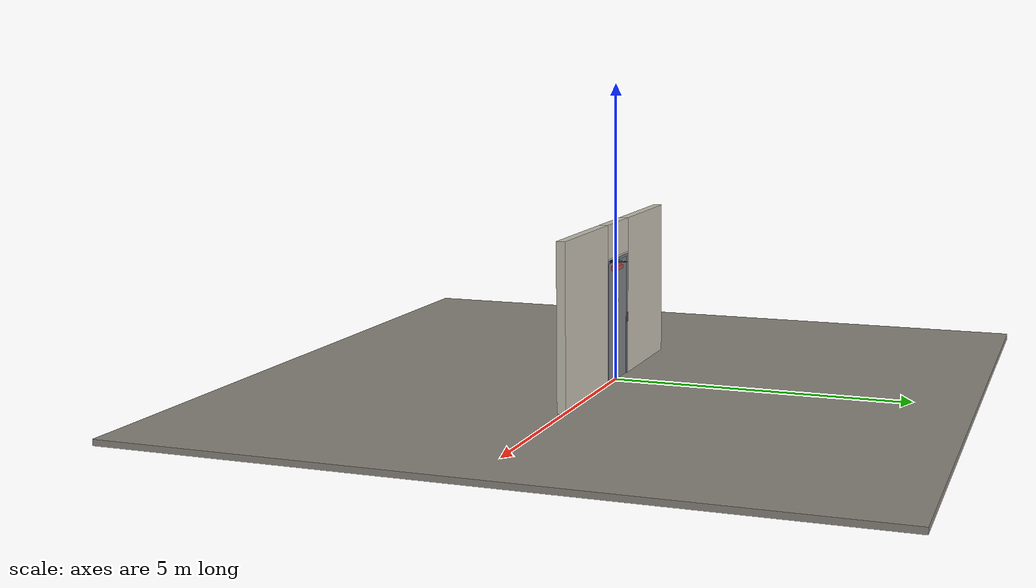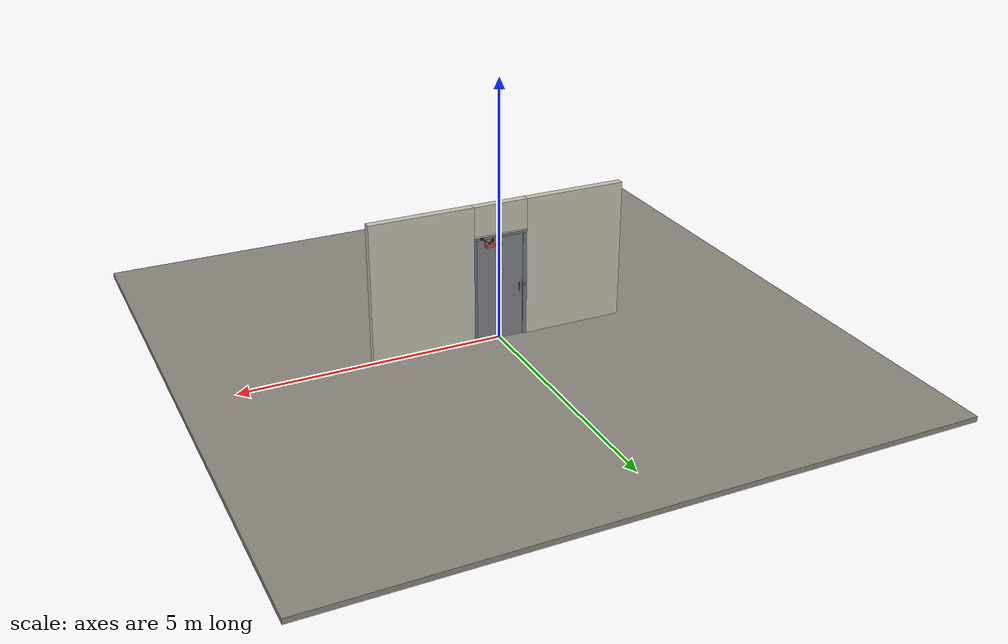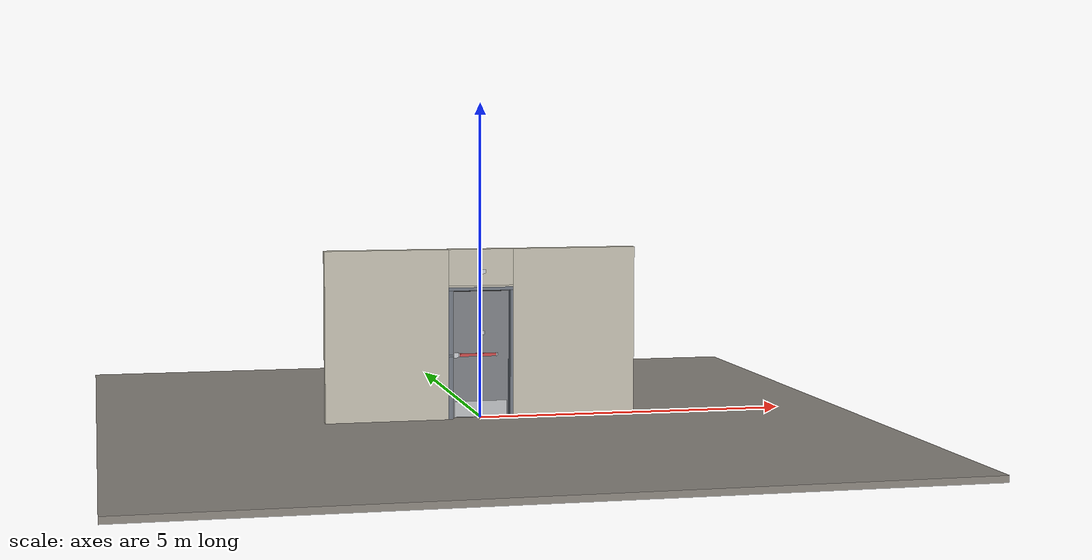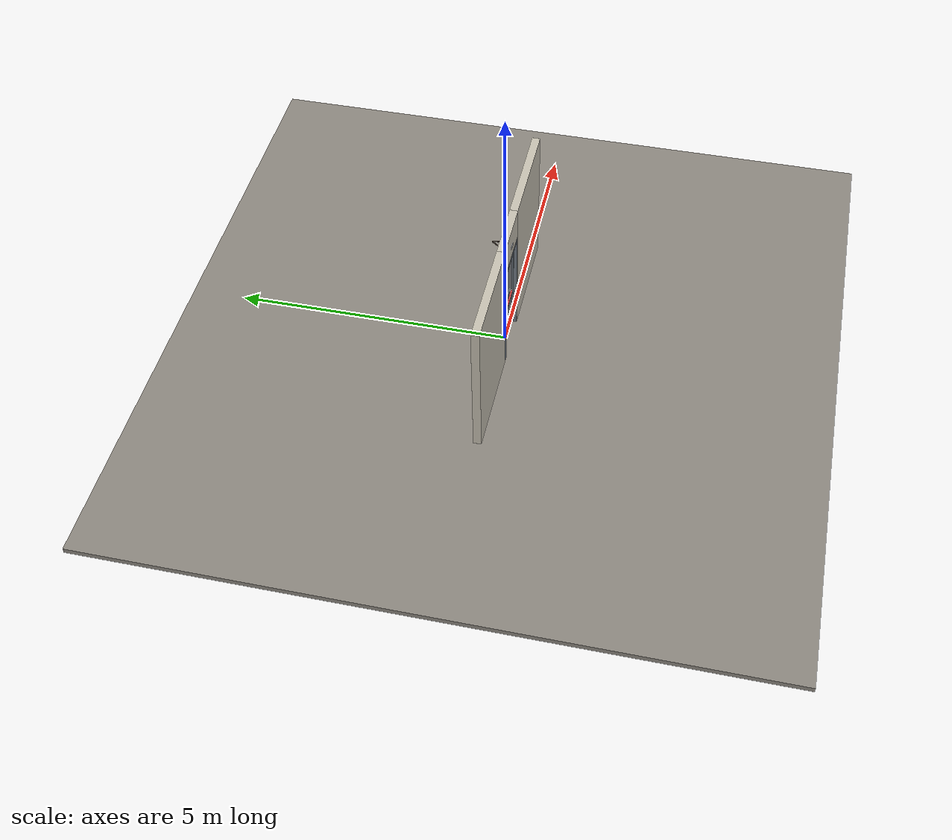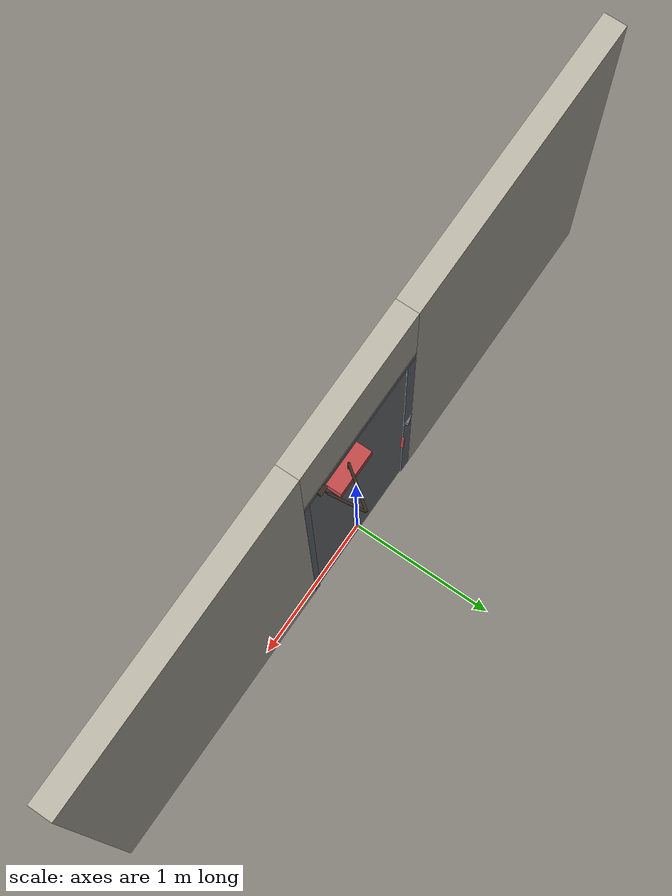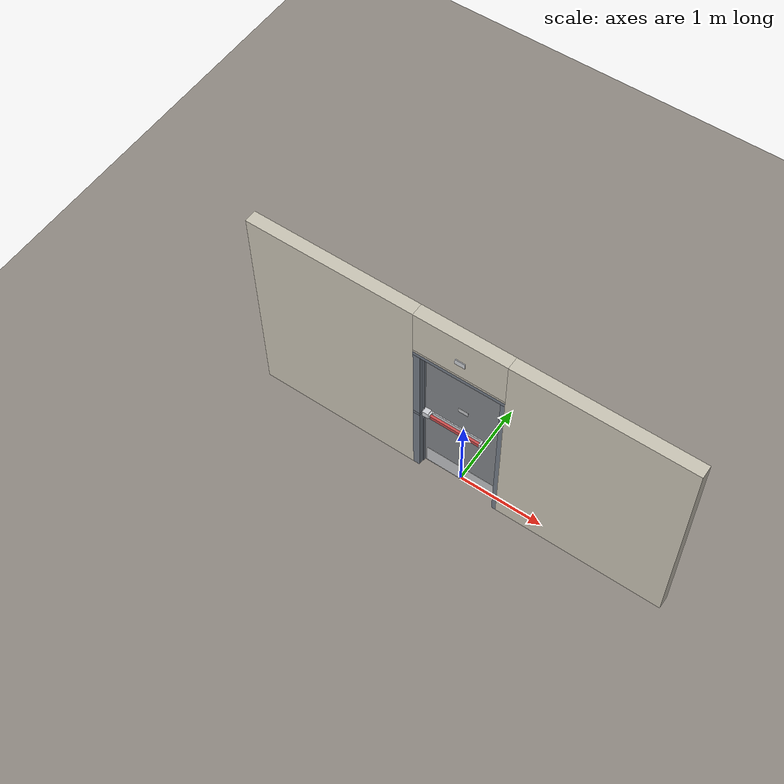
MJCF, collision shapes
<?xml version="1.0" ?>
<mujoco model="db0773_swing_single_full">
  <compiler angle="radian" meshdir="../../hardware" texturedir="../../textures" autolimits="true" inertiafromgeom="false"/>
  <option timestep="0.002" integrator="implicitfast" cone="elliptic" impratio="10" noslip_iterations="3">
    <flag multiccd="enable"/>
  </option>
  <size memory="16M"/>
  <default>
    <geom condim="4" solref="0.005 1" solimp="0.95 0.99 0.001"/>
    <joint solreflimit="0.005 1" solimplimit="0.95 0.99 0.001"/>
    <tendon solreflimit="0.005 1"/>
    <equality solref="0.002 1"/>
  </default>
  <visual>
    <headlight ambient="0.4 0.4 0.4" diffuse="0.7 0.7 0.7" specular="0.2 0.2 0.2"/>
    <quality shadowsize="4096"/>
    <map znear="0.01" zfar="60"/>
  </visual>
  <asset>
    <mesh name="closer_body_fdc4667657" file="closer_body_fdc4667657.obj"/>
    <mesh name="exit_sign_a6449bfa2c" file="exit_sign_a6449bfa2c.obj"/>
    <mesh name="hinge_e22b26c0c1" file="hinge_e22b26c0c1.obj"/>
    <mesh name="hinge_jamb_e1d088f8dc" file="hinge_jamb_e1d088f8dc.obj"/>
    <mesh name="pull_1e5d69a91a" file="pull_1e5d69a91a.obj"/>
    <mesh name="touchbar_pad_2729a067b4" file="touchbar_pad_2729a067b4.obj"/>
    <material name="mat_floor" rgba="0.55 0.53 0.5 1" specular="0.2" shininess="0.15" reflectance="0"/>
    <material name="mat_wall" rgba="0.78 0.76 0.7 1" specular="0.2" shininess="0.1" reflectance="0"/>
    <material name="mat_leaf" rgba="0.5 0.51 0.53 1" specular="0.23" shininess="0.33" reflectance="0.02"/>
    <material name="mat_hinge" rgba="0.65 0.66 0.68 1" specular="0.74" shininess="0.5" reflectance="0.36"/>
    <material name="mat_op_aluminum" rgba="0.8 0.81 0.83 1" specular="0.8" shininess="0.6" reflectance="0.4"/>
    <material name="mat_op_stainless" rgba="0.75 0.76 0.77 1" specular="0.8" shininess="0.65" reflectance="0.4"/>
    <material name="mat_bolt" rgba="0.75 0.76 0.77 1" specular="0.8" shininess="0.65" reflectance="0.4"/>
    <material name="mat_frame" rgba="0.45 0.48 0.52 1" specular="0.32" shininess="0.6" reflectance="0.08"/>
    <material name="mat_seal" rgba="0.1 0.1 0.1 1" specular="0.2" shininess="0.1" reflectance="0"/>
    <material name="mat_closer" rgba="0.22 0.17 0.13 1" specular="0.8" shininess="0.6" reflectance="0.4"/>
    <material name="mat_kick" rgba="0.75 0.76 0.77 1" specular="0.8" shininess="0.65" reflectance="0.4"/>
    <material name="mat_exit_sign" rgba="0.85 0.1 0.1 1" specular="0.2" shininess="0.6" reflectance="0"/>
    <material name="mat_sign_bracket" rgba="0.8 0.81 0.83 1" specular="0.8" shininess="0.6" reflectance="0.4"/>
    <material name="mat_sign" rgba="0.75 0.76 0.77 1" specular="0.8" shininess="0.65" reflectance="0.4"/>
    <texture name="skybox" type="skybox" builtin="gradient" rgb1="0.6 0.7 0.85" rgb2="0.9 0.92 0.95" width="256" height="256"/>
  </asset>
  <worldbody>
    <light name="sun" pos="1.5 -2.5 4" dir="-0.3 0.5 -0.8" directional="true" diffuse="0.8 0.8 0.8" specular="0.3 0.3 0.3" castshadow="true"/>
    <light name="fill" pos="-1.5 2.5 3" dir="0.3 -0.5 -0.7" directional="true" diffuse="0.35 0.35 0.4" castshadow="false"/>
    <camera name="robot_view" pos="0 -2.585687 1.734312" xyaxes="1 0 0 0 0.26963 0.962964" fovy="52"/>
    <camera name="far_view" pos="0 2.498687 1.734312" xyaxes="-1 0 0 0 -0.26963 0.962964" fovy="52"/>
    <camera name="iso" pos="-1.932062 -2.178937 2.141063" xyaxes="0.741536 -0.670913 0 0.242917 0.268487 0.932151" fovy="46"/>
    <camera name="detail_handle" pos="-0.1865 -0.718 1.296" xyaxes="0.97561 0.219512 0 -0.070934 0.315262 0.94635" fovy="38"/>
    <geom name="floor" type="box" size="6 6 0.05" pos="0 0 -0.05" material="mat_floor" group="0" contype="1" conaffinity="1" friction="0.8 0.005 0.0001" density="2400"/>
    <geom name="wall_left" type="box" size="0.97975 0.0725 1.35" pos="-1.52025 -0.0435 1.35" material="mat_wall" group="0" contype="1" conaffinity="1" friction="0.6 0.005 0.0001" density="800"/>
    <geom name="wall_right" type="box" size="0.99475 0.0725 1.35" pos="1.50525 -0.0435 1.35" material="mat_wall" group="0" contype="1" conaffinity="1" friction="0.6 0.005 0.0001" density="800"/>
    <geom name="wall_header" type="box" size="0.5255 0.0725 0.2875" pos="-0.015 -0.0435 2.4125" material="mat_wall" group="0" contype="1" conaffinity="1" friction="0.6 0.005 0.0001" density="800"/>
    <geom name="hinge_0_jamb" type="mesh" mesh="hinge_jamb_e1d088f8dc" pos="0.4575 0.029 0.259" quat="0 0 0 1" material="mat_hinge" group="1" contype="0" conaffinity="0" density="7850"/>
    <geom name="hinge_1_jamb" type="mesh" mesh="hinge_jamb_e1d088f8dc" pos="0.4575 0.029 1.025" quat="0 0 0 1" material="mat_hinge" group="1" contype="0" conaffinity="0" density="7850"/>
    <geom name="hinge_2_jamb" type="mesh" mesh="hinge_jamb_e1d088f8dc" pos="0.4575 0.029 1.861" quat="0 0 0 1" material="mat_hinge" group="1" contype="0" conaffinity="0" density="7850"/>
    <geom name="jamb_hinge" type="box" size="0.025 0.0725 1.0225" pos="0.4855 -0.0435 1.0225" material="mat_frame" group="0" contype="1" conaffinity="1" friction="0.6 0.005 0.0001" density="300"/>
    <geom name="strike_1016_wall_n" type="box" size="0.04 0.0305 0.02" pos="-0.5005 -0.0855 1.016" material="mat_frame" group="0" contype="1" conaffinity="1" friction="0.6 0.005 0.0001" density="300"/>
    <geom name="strike_1016_wall_p" type="box" size="0.04 0.008 0.02" pos="-0.5005 -0.025 1.016" material="mat_frame" group="0" contype="1" conaffinity="1" friction="0.6 0.005 0.0001" density="300"/>
    <geom name="strike_1016_ramp" type="box" size="0.04 0.034482 0.02" pos="-0.508781 0.0044 1.016" quat="0.989198 0 0 0.146587" material="mat_frame" group="0" contype="1" conaffinity="1" friction="0.12 0.005 0.0001" density="300"/>
    <geom name="strike_1016_back" type="box" size="0.0285 0.011 0.02" pos="-0.512 -0.044 1.016" material="mat_frame" group="0" contype="1" conaffinity="1" friction="0.6 0.005 0.0001" density="300"/>
    <geom name="jamb_strike_0" type="box" size="0.04 0.0725 0.498" pos="-0.5005 -0.0435 0.498" material="mat_frame" group="0" contype="1" conaffinity="1" friction="0.6 0.005 0.0001" density="300"/>
    <geom name="jamb_strike_1" type="box" size="0.04 0.0725 0.5045" pos="-0.5005 -0.0435 1.5405" material="mat_frame" group="0" contype="1" conaffinity="1" friction="0.6 0.005 0.0001" density="300"/>
    <geom name="jamb_head" type="box" size="0.5255 0.0725 0.025" pos="-0.015 -0.0435 2.07" material="mat_frame" group="0" contype="1" conaffinity="1" friction="0.6 0.005 0.0001" density="300"/>
    <geom name="head_stud" type="box" size="0.5255 0.0725 0.015" pos="-0.015 -0.0435 2.11" material="mat_wall" group="0" contype="1" conaffinity="1" friction="0.6 0.005 0.0001" density="500"/>
    <geom name="stop_hinge" type="box" size="0.0055 0.016 1.0225" pos="0.455 -0.0385 1.0225" material="mat_frame" group="0" contype="1" conaffinity="1" friction="0.6 0.005 0.0001" density="300"/>
    <geom name="stop_strike" type="box" size="0.0055 0.016 0.48425" pos="-0.455 -0.0385 0.48425" material="mat_frame" group="0" contype="1" conaffinity="1" friction="0.6 0.005 0.0001" density="300"/>
    <geom name="stop_strike_1" type="box" size="0.0055 0.016 0.49075" pos="-0.455 -0.0385 1.55425" material="mat_frame" group="0" contype="1" conaffinity="1" friction="0.6 0.005 0.0001" density="300"/>
    <geom name="stop_head" type="box" size="0.4605 0.016 0.0055" pos="0 -0.0385 2.0395" material="mat_frame" group="0" contype="1" conaffinity="1" friction="0.6 0.005 0.0001" density="300"/>
    <geom name="seal_hinge" type="box" size="0.004 0.0025 1.0225" pos="0.4575 -0.0245 1.0225" material="mat_seal" group="1" contype="0" conaffinity="0" density="1100"/>
    <geom name="seal_strike" type="box" size="0.004 0.0025 0.48425" pos="-0.4575 -0.0245 0.48425" material="mat_seal" group="1" contype="0" conaffinity="0" density="1100"/>
    <geom name="seal_strike_1" type="box" size="0.004 0.0025 0.49075" pos="-0.4575 -0.0245 1.55425" material="mat_seal" group="1" contype="0" conaffinity="0" density="1100"/>
    <geom name="seal_head" type="box" size="0.4405 0.0025 0.008" pos="0 -0.0245 2.033" material="mat_seal" group="1" contype="0" conaffinity="0" density="1100"/>
    <geom name="closer_bracket" type="box" size="0.03 0.012 0.014" pos="0.3605 0.041 2.075" material="mat_closer" group="1" contype="0" conaffinity="0" density="2700"/>
    <geom name="exit_sign" type="mesh" mesh="exit_sign_a6449bfa2c" pos="0 -0.15 2.345" material="mat_exit_sign" group="2" contype="0" conaffinity="0" density="500"/>
    <geom name="exit_sign_bracket" type="box" size="0.05775 0.005 0.035" pos="0 -0.1205 2.345" material="mat_sign_bracket" group="2" contype="0" conaffinity="0" density="7850"/>
    <site name="approach_point" pos="0 -1.5 0" quat="1 0 0 0" size="0.05" rgba="0.2 0.9 0.2 0.5" group="4"/>
    <site name="goal_point" pos="0 1.5 0" quat="1 0 0 0" size="0.05" rgba="0.2 0.9 0.2 0.5" group="4"/>
    <site name="door_plane_center" pos="0 0 1.0225" quat="1 0 0 0" size="0.02" rgba="0.2 0.9 0.2 0.5" group="4"/>
    <body name="leaf" pos="0.4605 0 0">
      <inertial pos="-0.429865 0.014043 1.19585" mass="51.938936" quat="0.517308 -0.519658 -0.494425 -0.466789" diaginertia="3.215740081 22.599443801 25.716215759"/>
      <joint name="leaf_hinge" type="hinge" axis="0 0 -1" pos="-0.003 0.029 0" limited="true" range="0 1.832596" solreflimit="0.02 1" damping="12.25611" frictionloss="5.15156" stiffness="11.911156" springref="-1.783202" armature="0.02"/>
      <geom name="leaf_slab" type="box" size="0.457 0.022 1.016" pos="-0.46 0 1.025" material="mat_leaf" group="0" contype="1" conaffinity="1" friction="0.4 0.005 0.0001" density="1"/>
      <geom name="hinge_0" type="mesh" mesh="hinge_e22b26c0c1" pos="-0.003 0.029 0.259" quat="0 0 0 1" material="mat_hinge" group="1" contype="0" conaffinity="0" density="7850"/>
      <geom name="hinge_1" type="mesh" mesh="hinge_e22b26c0c1" pos="-0.003 0.029 1.025" quat="0 0 0 1" material="mat_hinge" group="1" contype="0" conaffinity="0" density="7850"/>
      <geom name="hinge_2" type="mesh" mesh="hinge_e22b26c0c1" pos="-0.003 0.029 1.861" quat="0 0 0 1" material="mat_hinge" group="1" contype="0" conaffinity="0" density="7850"/>
      <geom name="leaf_exit_device_rail" type="box" size="0.31705 0.006 0.025" pos="-0.51995 -0.028 1.016" material="mat_op_aluminum" group="0" contype="1" conaffinity="1" friction="0.6 0.005 0.0001" density="3000"/>
      <geom name="leaf_exit_device_rail_end_n" type="box" size="0.01 0.0325 0.025" pos="-0.827 -0.0545 1.016" material="mat_op_aluminum" group="0" contype="1" conaffinity="1" friction="0.6 0.005 0.0001" density="3000"/>
      <geom name="leaf_exit_device_rail_end_p" type="box" size="0.01 0.0325 0.025" pos="-0.2129 -0.0545 1.016" material="mat_op_aluminum" group="0" contype="1" conaffinity="1" friction="0.6 0.005 0.0001" density="3000"/>
      <geom name="leaf_exit_device_case" type="box" size="0.034 0.034125 0.0375" pos="-0.871 -0.056125 1.016" material="mat_op_aluminum" group="0" contype="1" conaffinity="1" friction="0.6 0.005 0.0001" density="3000"/>
      <geom name="leaf_far_pull_p" type="mesh" mesh="pull_1e5d69a91a" pos="-0.827 0.022 1.016" quat="0 0 0.707107 0.707107" material="mat_op_stainless" group="1" contype="0" conaffinity="0" density="3000"/>
      <geom name="leaf_far_pull_col_p" type="capsule" size="0.0095 0.08" pos="-0.827 0.082 1.016" material="mat_op_stainless" group="3" contype="1" conaffinity="1" rgba="0.8 0.3 0.3 0.25" friction="0.7 0.01 0.0001" density="3000"/>
      <geom name="closer_body" type="mesh" mesh="closer_body_fdc4667657" pos="-0.3 0.022 1.952" quat="0 0 0.707107 0.707107" material="mat_closer" group="1" contype="0" conaffinity="0" density="2000"/>
      <geom name="closer_body_col" type="box" size="0.145 0.05 0.035" pos="-0.3 0.072 1.952" material="mat_closer" group="3" contype="1" conaffinity="1" rgba="0.8 0.3 0.3 0.25" friction="0.6 0.005 0.0001" density="2000"/>
      <geom name="closer_pinion_shaft" type="cylinder" size="0.008 0.0615" pos="-0.3 0.072 2.0135" material="mat_closer" group="1" contype="0" conaffinity="0" density="2700"/>
      <geom name="kick_plate_n" type="box" size="0.427 0.0008 0.125" pos="-0.46 -0.0228 0.144" material="mat_kick" group="2" contype="0" conaffinity="0" density="7900"/>
      <geom name="sign_push" type="box" size="0.06 0.001 0.03" pos="-0.46 -0.023 1.359" material="mat_sign" group="2" contype="0" conaffinity="0" density="7900"/>
      <geom name="sign_pull" type="box" size="0.06 0.001 0.03" pos="-0.46 0.023 1.359" material="mat_sign" group="2" contype="0" conaffinity="0" density="7900"/>
      <site name="leaf_far_pull_grip_p" pos="-0.827 0.082 1.016" quat="1 0 0 0" size="0.012" rgba="0.2 0.9 0.2 0.5" group="4"/>
      <site name="leaf_edge_mid" pos="-0.917 0 1.016" quat="1 0 0 0" size="0.02" rgba="0.2 0.9 0.2 0.5" group="4"/>
      <body name="leaf_exit_device" pos="-0.51995 -0.022 1.016">
        <inertial pos="0 -0.05 0" mass="4.76361" quat="0 0 -0.707107 0.707107" diaginertia="0.00116113 0.137653089 0.138099678"/>
        <joint name="leaf_exit_device_slide" type="slide" axis="0 1 0" limited="true" range="0 0.016" damping="117.294962" frictionloss="0.5" stiffness="700" springref="-0.011429" armature="0.15"/>
        <geom name="leaf_exit_device_pad" type="mesh" mesh="touchbar_pad_2729a067b4" pos="0 0 0" quat="0 0 -0.707107 0.707107" material="mat_op_aluminum" group="1" contype="0" conaffinity="0" density="3000"/>
        <geom name="leaf_exit_device_pad_col" type="box" size="0.29405 0.015 0.0225" pos="0 -0.05 0" material="mat_op_aluminum" group="3" contype="1" conaffinity="1" rgba="0.8 0.3 0.3 0.25" friction="0.8 0.01 0.0001" density="3000"/>
        <site name="leaf_exit_device_push" pos="0 -0.065 0" quat="1 0 0 0" size="0.015" rgba="0.2 0.9 0.2 0.5" group="4"/>
      </body>
      <body name="leaf_latch_bolt" pos="-0.917 -0.044 1.016">
        <inertial pos="0.0055 0 0" mass="0.102826" quat="0.92388 0.382683 0 0" diaginertia="0.000004365 0.000018287 0.000018287"/>
        <joint name="leaf_latch_bolt_slide" type="slide" axis="1 0 0" limited="true" range="0 0.019" damping="2" frictionloss="0.3" stiffness="800" springref="-0.01" armature="0.1"/>
        <geom name="leaf_latch_bolt_capsule" type="capsule" size="0.0095 0.015" pos="0.0055 0 0" quat="0.707107 0 -0.707107 0" material="mat_bolt" group="0" contype="1" conaffinity="1" friction="0.2 0.005 0.0001" density="8500"/>
      </body>
      <body name="closer_arm_main" pos="-0.3 0.072 2.075" quat="0.890947 0 0 0.454107">
        <inertial pos="0.14 0 0" mass="0.12096" quat="1 0 0 0" diaginertia="0.000003588 0.00079128 0.000792852"/>
        <joint name="closer_pinion" type="hinge" axis="0 0 1" limited="false" damping="0.01" armature="0.002"/>
        <geom name="closer_arm_main_geom" type="box" size="0.14 0.008 0.005" pos="0.14 0 0" material="mat_closer" group="1" contype="0" conaffinity="0" density="2700"/>
        <body name="closer_arm_fore" pos="0.28 0 0" quat="0.373215 0 0 -0.927745">
          <inertial pos="0.128088 0 0" mass="0.076531" quat="1 0 0 0" diaginertia="0.000001771 0.000437665 0.000438201"/>
          <joint name="closer_elbow" type="hinge" axis="0 0 1" limited="false" damping="0.01" armature="0.002"/>
          <geom name="closer_arm_fore_geom" type="box" size="0.1125 0.007 0.004" pos="0.1125 0 0" material="mat_closer" group="1" contype="0" conaffinity="0" density="2700"/>
          <geom name="closer_fore_neck" type="box" size="0.0175 0.003 0.003" pos="0.2425 0 0" material="mat_closer" group="1" contype="0" conaffinity="0" density="2700"/>
          <geom name="closer_fore_pivot" type="cylinder" size="0.005 0.012" pos="0.26 0 0" material="mat_closer" group="1" contype="0" conaffinity="0" density="2700"/>
        </body>
      </body>
    </body>
  </worldbody>
  <tendon>
    <fixed name="leaf_latch_bolt_coupling" limited="true" range="0 10">
      <joint joint="leaf_latch_bolt_slide" coef="1"/>
      <joint joint="leaf_exit_device_slide" coef="-1.357143"/>
    </fixed>
  </tendon>
  <equality>
    <connect name="closer_arm_connect" body1="closer_arm_fore" body2="world" anchor="0.26 0 0" active="true"/>
  </equality>
  <contact>
    <exclude body1="closer_arm_main" body2="leaf"/>
    <exclude body1="closer_arm_fore" body2="leaf"/>
    <exclude body1="closer_arm_main" body2="closer_arm_fore"/>
  </contact>
  <sensor>
    <jointpos name="leaf_hinge_pos" joint="leaf_hinge"/>
    <jointvel name="leaf_hinge_vel" joint="leaf_hinge"/>
    <jointpos name="leaf_exit_device_slide_pos" joint="leaf_exit_device_slide"/>
    <jointvel name="leaf_exit_device_slide_vel" joint="leaf_exit_device_slide"/>
    <jointpos name="leaf_latch_bolt_slide_pos" joint="leaf_latch_bolt_slide"/>
    <jointvel name="leaf_latch_bolt_slide_vel" joint="leaf_latch_bolt_slide"/>
  </sensor>
</mujoco>
